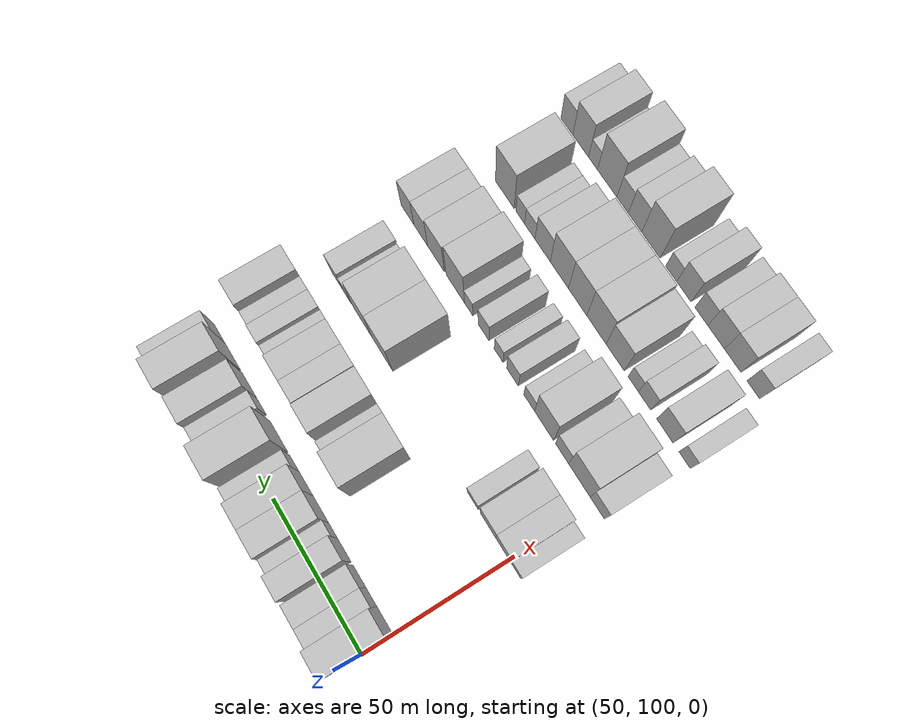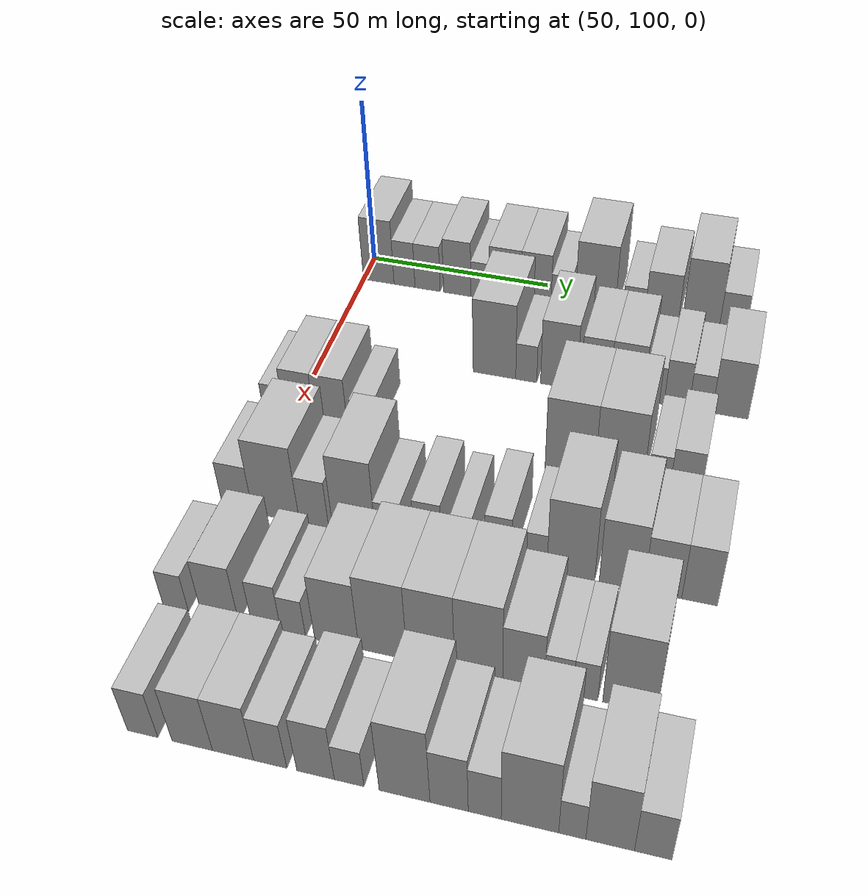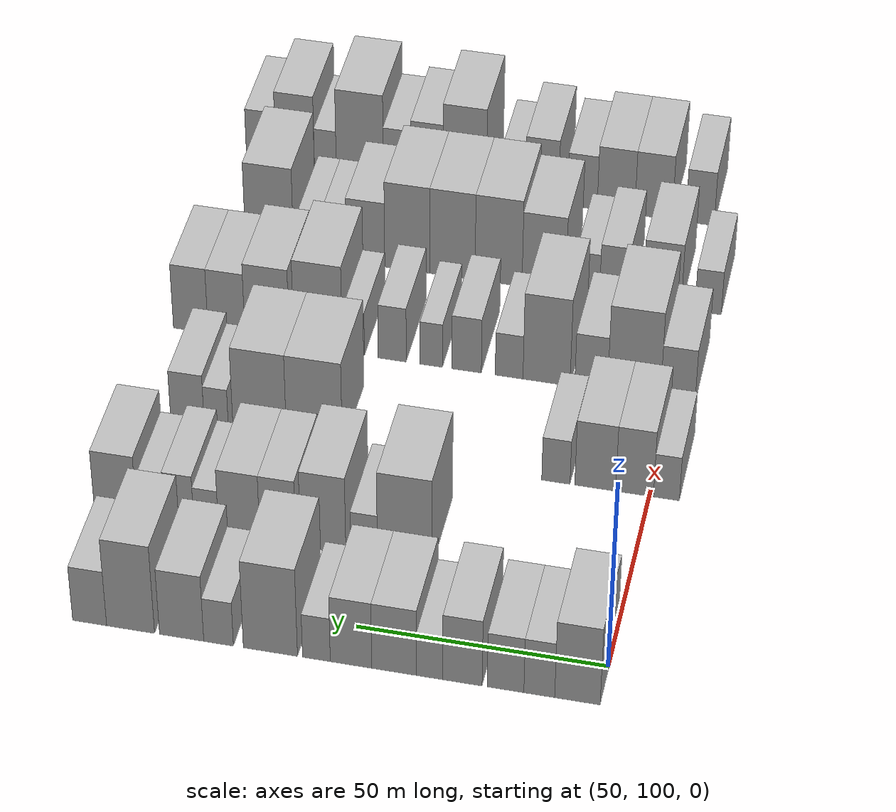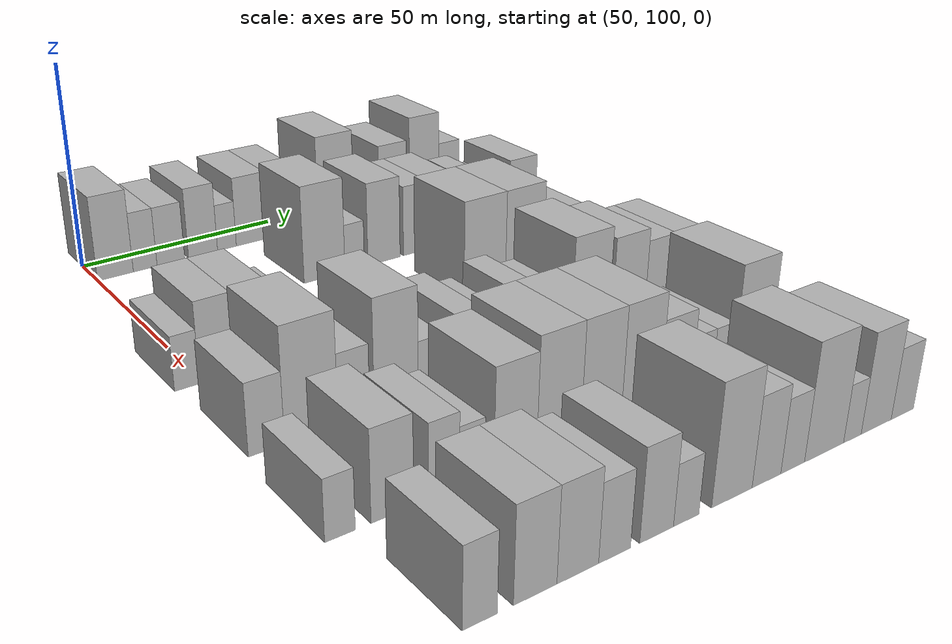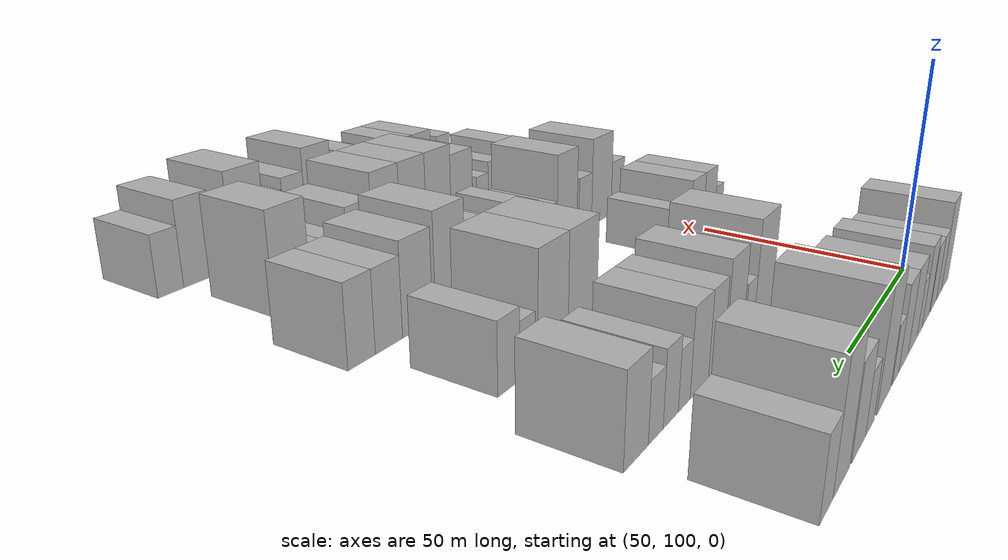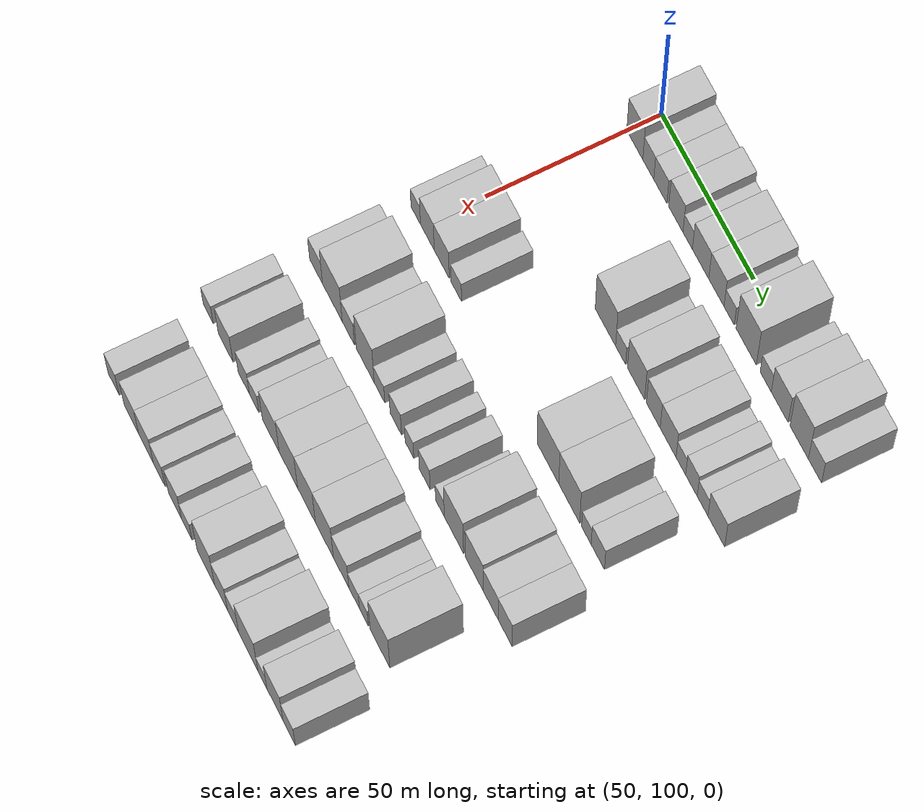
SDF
<sdf version="1.6">
 <world name="default">
  <model name="building_69">
   <static>1</static>
   <pose>50.0000 104.3510 0 0.000000 0.000000 0.000000</pose>
   <link name="link">
    <pose>0 0 10.50 0 0 0</pose>
    <collision name="collision"><geometry><box><size>20.0000 8.8529 21.0000</size></box></geometry></collision>
    <visual name="visual">
     <cast_shadows>0</cast_shadows>
     <geometry><box><size>20.0000 8.8529 21.0000</size></box></geometry>
     <material>
      <script>
       <uri>model://HANNAS_wall/materials/scripts</uri>
       <uri>model://HANNAS_wall/materials/textures</uri>
       <name>vrc/HANNAS_wall</name>
      </script>
     </material>
    </visual>
   </link>
  </model>
  <model name="building_70">
   <static>1</static>
   <pose>50.0000 111.7873 0 0.000000 0.000000 0.000000</pose>
   <link name="link">
    <pose>0 0 7.50 0 0 0</pose>
    <collision name="collision"><geometry><box><size>20.0000 6.0197 15.0000</size></box></geometry></collision>
    <visual name="visual">
     <cast_shadows>0</cast_shadows>
     <geometry><box><size>20.0000 6.0197 15.0000</size></box></geometry>
     <material>
      <script>
       <uri>model://HANNAS_wall/materials/scripts</uri>
       <uri>model://HANNAS_wall/materials/textures</uri>
       <name>vrc/HANNAS_wall</name>
      </script>
     </material>
    </visual>
   </link>
  </model>
  <model name="building_71">
   <static>1</static>
   <pose>50.0000 118.3914 0 0.000000 0.000000 0.000000</pose>
   <link name="link">
    <pose>0 0 7.50 0 0 0</pose>
    <collision name="collision"><geometry><box><size>20.0000 7.1885 15.0000</size></box></geometry></collision>
    <visual name="visual">
     <cast_shadows>0</cast_shadows>
     <geometry><box><size>20.0000 7.1885 15.0000</size></box></geometry>
     <material>
      <script>
       <uri>model://HANNAS_wall/materials/scripts</uri>
       <uri>model://HANNAS_wall/materials/textures</uri>
       <name>vrc/HANNAS_wall</name>
      </script>
     </material>
    </visual>
   </link>
  </model>
  <model name="building_72">
   <static>1</static>
   <pose>50.0000 126.8621 0 0.000000 0.000000 0.000000</pose>
   <link name="link">
    <pose>0 0 9.00 0 0 0</pose>
    <collision name="collision"><geometry><box><size>20.0000 7.7528 18.0000</size></box></geometry></collision>
    <visual name="visual">
     <cast_shadows>0</cast_shadows>
     <geometry><box><size>20.0000 7.7528 18.0000</size></box></geometry>
     <material>
      <script>
       <uri>model://HANNAS_wall/materials/scripts</uri>
       <uri>model://HANNAS_wall/materials/textures</uri>
       <name>vrc/HANNAS_wall</name>
      </script>
     </material>
    </visual>
   </link>
  </model>
  <model name="building_73">
   <static>1</static>
   <pose>50.0000 133.3177 0 0.000000 0.000000 0.000000</pose>
   <link name="link">
    <pose>0 0 6.00 0 0 0</pose>
    <collision name="collision"><geometry><box><size>20.0000 5.1585 12.0000</size></box></geometry></collision>
    <visual name="visual">
     <cast_shadows>0</cast_shadows>
     <geometry><box><size>20.0000 5.1585 12.0000</size></box></geometry>
     <material>
      <script>
       <uri>model://HANNAS_wall/materials/scripts</uri>
       <uri>model://HANNAS_wall/materials/textures</uri>
       <name>vrc/HANNAS_wall</name>
      </script>
     </material>
    </visual>
   </link>
  </model>
  <model name="building_74">
   <static>1</static>
   <pose>50.0000 140.3248 0 0.000000 0.000000 0.000000</pose>
   <link name="link">
    <pose>0 0 9.00 0 0 0</pose>
    <collision name="collision"><geometry><box><size>20.0000 8.8556 18.0000</size></box></geometry></collision>
    <visual name="visual">
     <cast_shadows>0</cast_shadows>
     <geometry><box><size>20.0000 8.8556 18.0000</size></box></geometry>
     <material>
      <script>
       <uri>model://HANNAS_wall/materials/scripts</uri>
       <uri>model://HANNAS_wall/materials/textures</uri>
       <name>vrc/HANNAS_wall</name>
      </script>
     </material>
    </visual>
   </link>
  </model>
  <model name="building_75">
   <static>1</static>
   <pose>50.0000 148.8690 0 0.000000 0.000000 0.000000</pose>
   <link name="link">
    <pose>0 0 9.00 0 0 0</pose>
    <collision name="collision"><geometry><box><size>20.0000 8.2329 18.0000</size></box></geometry></collision>
    <visual name="visual">
     <cast_shadows>0</cast_shadows>
     <geometry><box><size>20.0000 8.2329 18.0000</size></box></geometry>
     <material>
      <script>
       <uri>model://HANNAS_wall/materials/scripts</uri>
       <uri>model://HANNAS_wall/materials/textures</uri>
       <name>vrc/HANNAS_wall</name>
      </script>
     </material>
    </visual>
   </link>
  </model>
  <model name="building_76">
   <static>1</static>
   <pose>50.0000 155.7527 0 0.000000 0.000000 0.000000</pose>
   <link name="link">
    <pose>0 0 6.00 0 0 0</pose>
    <collision name="collision"><geometry><box><size>20.0000 5.5344 12.0000</size></box></geometry></collision>
    <visual name="visual">
     <cast_shadows>0</cast_shadows>
     <geometry><box><size>20.0000 5.5344 12.0000</size></box></geometry>
     <material>
      <script>
       <uri>model://HANNAS_wall/materials/scripts</uri>
       <uri>model://HANNAS_wall/materials/textures</uri>
       <name>vrc/HANNAS_wall</name>
      </script>
     </material>
    </visual>
   </link>
  </model>
  <model name="building_77">
   <static>1</static>
   <pose>50.0000 164.9364 0 0.000000 0.000000 0.000000</pose>
   <link name="link">
    <pose>0 0 12.00 0 0 0</pose>
    <collision name="collision"><geometry><box><size>20.0000 10.8329 24.0000</size></box></geometry></collision>
    <visual name="visual">
     <cast_shadows>0</cast_shadows>
     <geometry><box><size>20.0000 10.8329 24.0000</size></box></geometry>
     <material>
      <script>
       <uri>model://HANNAS_wall/materials/scripts</uri>
       <uri>model://HANNAS_wall/materials/textures</uri>
       <name>vrc/HANNAS_wall</name>
      </script>
     </material>
    </visual>
   </link>
  </model>
  <model name="building_78">
   <static>1</static>
   <pose>50.0000 175.3339 0 0.000000 0.000000 0.000000</pose>
   <link name="link">
    <pose>0 0 6.00 0 0 0</pose>
    <collision name="collision"><geometry><box><size>20.0000 5.9622 12.0000</size></box></geometry></collision>
    <visual name="visual">
     <cast_shadows>0</cast_shadows>
     <geometry><box><size>20.0000 5.9622 12.0000</size></box></geometry>
     <material>
      <script>
       <uri>model://HANNAS_wall/materials/scripts</uri>
       <uri>model://HANNAS_wall/materials/textures</uri>
       <name>vrc/HANNAS_wall</name>
      </script>
     </material>
    </visual>
   </link>
  </model>
  <model name="building_79">
   <static>1</static>
   <pose>50.0000 182.7786 0 0.000000 0.000000 0.000000</pose>
   <link name="link">
    <pose>0 0 9.00 0 0 0</pose>
    <collision name="collision"><geometry><box><size>20.0000 8.9271 18.0000</size></box></geometry></collision>
    <visual name="visual">
     <cast_shadows>0</cast_shadows>
     <geometry><box><size>20.0000 8.9271 18.0000</size></box></geometry>
     <material>
      <script>
       <uri>model://HANNAS_wall/materials/scripts</uri>
       <uri>model://HANNAS_wall/materials/textures</uri>
       <name>vrc/HANNAS_wall</name>
      </script>
     </material>
    </visual>
   </link>
  </model>
  <model name="building_80">
   <static>1</static>
   <pose>50.0000 193.1009 0 0.000000 0.000000 0.000000</pose>
   <link name="link">
    <pose>0 0 12.00 0 0 0</pose>
    <collision name="collision"><geometry><box><size>20.0000 9.7175 24.0000</size></box></geometry></collision>
    <visual name="visual">
     <cast_shadows>0</cast_shadows>
     <geometry><box><size>20.0000 9.7175 24.0000</size></box></geometry>
     <material>
      <script>
       <uri>model://HANNAS_wall/materials/scripts</uri>
       <uri>model://HANNAS_wall/materials/textures</uri>
       <name>vrc/HANNAS_wall</name>
      </script>
     </material>
    </visual>
   </link>
  </model>
  <model name="building_81">
   <static>1</static>
   <pose>50.0000 201.4125 0 0.000000 0.000000 0.000000</pose>
   <link name="link">
    <pose>0 0 7.50 0 0 0</pose>
    <collision name="collision"><geometry><box><size>20.0000 6.9056 15.0000</size></box></geometry></collision>
    <visual name="visual">
     <cast_shadows>0</cast_shadows>
     <geometry><box><size>20.0000 6.9056 15.0000</size></box></geometry>
     <material>
      <script>
       <uri>model://HANNAS_wall/materials/scripts</uri>
       <uri>model://HANNAS_wall/materials/textures</uri>
       <name>vrc/HANNAS_wall</name>
      </script>
     </material>
    </visual>
   </link>
  </model>
  <model name="building_185">
   <static>1</static>
   <pose>79.0000 144.6253 0 0.000000 0.000000 0.000000</pose>
   <link name="link">
    <pose>0 0 12.00 0 0 0</pose>
    <collision name="collision"><geometry><box><size>20.0000 11.1247 24.0000</size></box></geometry></collision>
    <visual name="visual">
     <cast_shadows>0</cast_shadows>
     <geometry><box><size>20.0000 11.1247 24.0000</size></box></geometry>
     <material>
      <script>
       <uri>model://HANNAS_wall/materials/scripts</uri>
       <uri>model://HANNAS_wall/materials/textures</uri>
       <name>vrc/HANNAS_wall</name>
      </script>
     </material>
    </visual>
   </link>
  </model>
  <model name="building_186">
   <static>1</static>
   <pose>79.0000 152.9149 0 0.000000 0.000000 0.000000</pose>
   <link name="link">
    <pose>0 0 6.00 0 0 0</pose>
    <collision name="collision"><geometry><box><size>20.0000 5.4545 12.0000</size></box></geometry></collision>
    <visual name="visual">
     <cast_shadows>0</cast_shadows>
     <geometry><box><size>20.0000 5.4545 12.0000</size></box></geometry>
     <material>
      <script>
       <uri>model://HANNAS_wall/materials/scripts</uri>
       <uri>model://HANNAS_wall/materials/textures</uri>
       <name>vrc/HANNAS_wall</name>
      </script>
     </material>
    </visual>
   </link>
  </model>
  <model name="building_187">
   <static>1</static>
   <pose>79.0000 161.2918 0 0.000000 0.000000 0.000000</pose>
   <link name="link">
    <pose>0 0 10.50 0 0 0</pose>
    <collision name="collision"><geometry><box><size>20.0000 9.2992 21.0000</size></box></geometry></collision>
    <visual name="visual">
     <cast_shadows>0</cast_shadows>
     <geometry><box><size>20.0000 9.2992 21.0000</size></box></geometry>
     <material>
      <script>
       <uri>model://HANNAS_wall/materials/scripts</uri>
       <uri>model://HANNAS_wall/materials/textures</uri>
       <name>vrc/HANNAS_wall</name>
      </script>
     </material>
    </visual>
   </link>
  </model>
  <model name="building_188">
   <static>1</static>
   <pose>79.0000 170.6440 0 0.000000 0.000000 0.000000</pose>
   <link name="link">
    <pose>0 0 9.00 0 0 0</pose>
    <collision name="collision"><geometry><box><size>20.0000 7.4051 18.0000</size></box></geometry></collision>
    <visual name="visual">
     <cast_shadows>0</cast_shadows>
     <geometry><box><size>20.0000 7.4051 18.0000</size></box></geometry>
     <material>
      <script>
       <uri>model://HANNAS_wall/materials/scripts</uri>
       <uri>model://HANNAS_wall/materials/textures</uri>
       <name>vrc/HANNAS_wall</name>
      </script>
     </material>
    </visual>
   </link>
  </model>
  <model name="building_189">
   <static>1</static>
   <pose>79.0000 178.6132 0 0.000000 0.000000 0.000000</pose>
   <link name="link">
    <pose>0 0 9.00 0 0 0</pose>
    <collision name="collision"><geometry><box><size>20.0000 8.5334 18.0000</size></box></geometry></collision>
    <visual name="visual">
     <cast_shadows>0</cast_shadows>
     <geometry><box><size>20.0000 8.5334 18.0000</size></box></geometry>
     <material>
      <script>
       <uri>model://HANNAS_wall/materials/scripts</uri>
       <uri>model://HANNAS_wall/materials/textures</uri>
       <name>vrc/HANNAS_wall</name>
      </script>
     </material>
    </visual>
   </link>
  </model>
  <model name="building_190">
   <static>1</static>
   <pose>79.0000 185.4321 0 0.000000 0.000000 0.000000</pose>
   <link name="link">
    <pose>0 0 6.00 0 0 0</pose>
    <collision name="collision"><geometry><box><size>20.0000 5.1045 12.0000</size></box></geometry></collision>
    <visual name="visual">
     <cast_shadows>0</cast_shadows>
     <geometry><box><size>20.0000 5.1045 12.0000</size></box></geometry>
     <material>
      <script>
       <uri>model://HANNAS_wall/materials/scripts</uri>
       <uri>model://HANNAS_wall/materials/textures</uri>
       <name>vrc/HANNAS_wall</name>
      </script>
     </material>
    </visual>
   </link>
  </model>
  <model name="building_191">
   <static>1</static>
   <pose>79.0000 191.0801 0 0.000000 0.000000 0.000000</pose>
   <link name="link">
    <pose>0 0 7.50 0 0 0</pose>
    <collision name="collision"><geometry><box><size>20.0000 6.1915 15.0000</size></box></geometry></collision>
    <visual name="visual">
     <cast_shadows>0</cast_shadows>
     <geometry><box><size>20.0000 6.1915 15.0000</size></box></geometry>
     <material>
      <script>
       <uri>model://HANNAS_wall/materials/scripts</uri>
       <uri>model://HANNAS_wall/materials/textures</uri>
       <name>vrc/HANNAS_wall</name>
      </script>
     </material>
    </visual>
   </link>
  </model>
  <model name="building_192">
   <static>1</static>
   <pose>79.0000 197.0369 0 0.000000 0.000000 0.000000</pose>
   <link name="link">
    <pose>0 0 6.00 0 0 0</pose>
    <collision name="collision"><geometry><box><size>20.0000 5.7221 12.0000</size></box></geometry></collision>
    <visual name="visual">
     <cast_shadows>0</cast_shadows>
     <geometry><box><size>20.0000 5.7221 12.0000</size></box></geometry>
     <material>
      <script>
       <uri>model://HANNAS_wall/materials/scripts</uri>
       <uri>model://HANNAS_wall/materials/textures</uri>
       <name>vrc/HANNAS_wall</name>
      </script>
     </material>
    </visual>
   </link>
  </model>
  <model name="building_193">
   <static>1</static>
   <pose>79.0000 204.3226 0 0.000000 0.000000 0.000000</pose>
   <link name="link">
    <pose>0 0 9.00 0 0 0</pose>
    <collision name="collision"><geometry><box><size>20.0000 8.8493 18.0000</size></box></geometry></collision>
    <visual name="visual">
     <cast_shadows>0</cast_shadows>
     <geometry><box><size>20.0000 8.8493 18.0000</size></box></geometry>
     <material>
      <script>
       <uri>model://HANNAS_wall/materials/scripts</uri>
       <uri>model://HANNAS_wall/materials/textures</uri>
       <name>vrc/HANNAS_wall</name>
      </script>
     </material>
    </visual>
   </link>
  </model>
  <model name="building_303">
   <static>1</static>
   <pose>108.0000 96.5431 0 0.000000 0.000000 0.000000</pose>
   <link name="link">
    <pose>0 0 6.00 0 0 0</pose>
    <collision name="collision"><geometry><box><size>20.0000 5.3476 12.0000</size></box></geometry></collision>
    <visual name="visual">
     <cast_shadows>0</cast_shadows>
     <geometry><box><size>20.0000 5.3476 12.0000</size></box></geometry>
     <material>
      <script>
       <uri>model://HANNAS_wall/materials/scripts</uri>
       <uri>model://HANNAS_wall/materials/textures</uri>
       <name>vrc/HANNAS_wall</name>
      </script>
     </material>
    </visual>
   </link>
  </model>
  <model name="building_304">
   <static>1</static>
   <pose>108.0000 103.1153 0 0.000000 0.000000 0.000000</pose>
   <link name="link">
    <pose>0 0 9.00 0 0 0</pose>
    <collision name="collision"><geometry><box><size>20.0000 7.7969 18.0000</size></box></geometry></collision>
    <visual name="visual">
     <cast_shadows>0</cast_shadows>
     <geometry><box><size>20.0000 7.7969 18.0000</size></box></geometry>
     <material>
      <script>
       <uri>model://HANNAS_wall/materials/scripts</uri>
       <uri>model://HANNAS_wall/materials/textures</uri>
       <name>vrc/HANNAS_wall</name>
      </script>
     </material>
    </visual>
   </link>
  </model>
  <model name="building_305">
   <static>1</static>
   <pose>108.0000 111.2338 0 0.000000 0.000000 0.000000</pose>
   <link name="link">
    <pose>0 0 9.00 0 0 0</pose>
    <collision name="collision"><geometry><box><size>20.0000 8.4402 18.0000</size></box></geometry></collision>
    <visual name="visual">
     <cast_shadows>0</cast_shadows>
     <geometry><box><size>20.0000 8.4402 18.0000</size></box></geometry>
     <material>
      <script>
       <uri>model://HANNAS_wall/materials/scripts</uri>
       <uri>model://HANNAS_wall/materials/textures</uri>
       <name>vrc/HANNAS_wall</name>
      </script>
     </material>
    </visual>
   </link>
  </model>
  <model name="building_306">
   <static>1</static>
   <pose>108.0000 119.3894 0 0.000000 0.000000 0.000000</pose>
   <link name="link">
    <pose>0 0 6.00 0 0 0</pose>
    <collision name="collision"><geometry><box><size>20.0000 5.8710 12.0000</size></box></geometry></collision>
    <visual name="visual">
     <cast_shadows>0</cast_shadows>
     <geometry><box><size>20.0000 5.8710 12.0000</size></box></geometry>
     <material>
      <script>
       <uri>model://HANNAS_wall/materials/scripts</uri>
       <uri>model://HANNAS_wall/materials/textures</uri>
       <name>vrc/HANNAS_wall</name>
      </script>
     </material>
    </visual>
   </link>
  </model>
  <model name="building_307">
   <static>1</static>
   <pose>108.0000 170.0744 0 0.000000 0.000000 0.000000</pose>
   <link name="link">
    <pose>0 0 12.00 0 0 0</pose>
    <collision name="collision"><geometry><box><size>20.0000 11.8330 24.0000</size></box></geometry></collision>
    <visual name="visual">
     <cast_shadows>0</cast_shadows>
     <geometry><box><size>20.0000 11.8330 24.0000</size></box></geometry>
     <material>
      <script>
       <uri>model://HANNAS_wall/materials/scripts</uri>
       <uri>model://HANNAS_wall/materials/textures</uri>
       <name>vrc/HANNAS_wall</name>
      </script>
     </material>
    </visual>
   </link>
  </model>
  <model name="building_308">
   <static>1</static>
   <pose>108.0000 181.6808 0 0.000000 0.000000 0.000000</pose>
   <link name="link">
    <pose>0 0 12.00 0 0 0</pose>
    <collision name="collision"><geometry><box><size>20.0000 11.3798 24.0000</size></box></geometry></collision>
    <visual name="visual">
     <cast_shadows>0</cast_shadows>
     <geometry><box><size>20.0000 11.3798 24.0000</size></box></geometry>
     <material>
      <script>
       <uri>model://HANNAS_wall/materials/scripts</uri>
       <uri>model://HANNAS_wall/materials/textures</uri>
       <name>vrc/HANNAS_wall</name>
      </script>
     </material>
    </visual>
   </link>
  </model>
  <model name="building_309">
   <static>1</static>
   <pose>108.0000 190.9514 0 0.000000 0.000000 0.000000</pose>
   <link name="link">
    <pose>0 0 6.00 0 0 0</pose>
    <collision name="collision"><geometry><box><size>20.0000 5.1615 12.0000</size></box></geometry></collision>
    <visual name="visual">
     <cast_shadows>0</cast_shadows>
     <geometry><box><size>20.0000 5.1615 12.0000</size></box></geometry>
     <material>
      <script>
       <uri>model://HANNAS_wall/materials/scripts</uri>
       <uri>model://HANNAS_wall/materials/textures</uri>
       <name>vrc/HANNAS_wall</name>
      </script>
     </material>
    </visual>
   </link>
  </model>
  <model name="building_310">
   <static>1</static>
   <pose>108.0000 197.1261 0 0.000000 0.000000 0.000000</pose>
   <link name="link">
    <pose>0 0 7.50 0 0 0</pose>
    <collision name="collision"><geometry><box><size>20.0000 7.1878 15.0000</size></box></geometry></collision>
    <visual name="visual">
     <cast_shadows>0</cast_shadows>
     <geometry><box><size>20.0000 7.1878 15.0000</size></box></geometry>
     <material>
      <script>
       <uri>model://HANNAS_wall/materials/scripts</uri>
       <uri>model://HANNAS_wall/materials/textures</uri>
       <name>vrc/HANNAS_wall</name>
      </script>
     </material>
    </visual>
   </link>
  </model>
  <model name="building_414">
   <static>1</static>
   <pose>137.0000 98.8829 0 0.000000 0.000000 0.000000</pose>
   <link name="link">
    <pose>0 0 7.50 0 0 0</pose>
    <collision name="collision"><geometry><box><size>20.0000 7.3211 15.0000</size></box></geometry></collision>
    <visual name="visual">
     <cast_shadows>0</cast_shadows>
     <geometry><box><size>20.0000 7.3211 15.0000</size></box></geometry>
     <material>
      <script>
       <uri>model://HANNAS_wall/materials/scripts</uri>
       <uri>model://HANNAS_wall/materials/textures</uri>
       <name>vrc/HANNAS_wall</name>
      </script>
     </material>
    </visual>
   </link>
  </model>
  <model name="building_415">
   <static>1</static>
   <pose>137.0000 108.1697 0 0.000000 0.000000 0.000000</pose>
   <link name="link">
    <pose>0 0 12.00 0 0 0</pose>
    <collision name="collision"><geometry><box><size>20.0000 11.2525 24.0000</size></box></geometry></collision>
    <visual name="visual">
     <cast_shadows>0</cast_shadows>
     <geometry><box><size>20.0000 11.2525 24.0000</size></box></geometry>
     <material>
      <script>
       <uri>model://HANNAS_wall/materials/scripts</uri>
       <uri>model://HANNAS_wall/materials/textures</uri>
       <name>vrc/HANNAS_wall</name>
      </script>
     </material>
    </visual>
   </link>
  </model>
  <model name="building_416">
   <static>1</static>
   <pose>137.0000 117.2885 0 0.000000 0.000000 0.000000</pose>
   <link name="link">
    <pose>0 0 7.50 0 0 0</pose>
    <collision name="collision"><geometry><box><size>20.0000 6.9851 15.0000</size></box></geometry></collision>
    <visual name="visual">
     <cast_shadows>0</cast_shadows>
     <geometry><box><size>20.0000 6.9851 15.0000</size></box></geometry>
     <material>
      <script>
       <uri>model://HANNAS_wall/materials/scripts</uri>
       <uri>model://HANNAS_wall/materials/textures</uri>
       <name>vrc/HANNAS_wall</name>
      </script>
     </material>
    </visual>
   </link>
  </model>
  <model name="building_417">
   <static>1</static>
   <pose>137.0000 126.8231 0 0.000000 0.000000 0.000000</pose>
   <link name="link">
    <pose>0 0 12.00 0 0 0</pose>
    <collision name="collision"><geometry><box><size>20.0000 10.0840 24.0000</size></box></geometry></collision>
    <visual name="visual">
     <cast_shadows>0</cast_shadows>
     <geometry><box><size>20.0000 10.0840 24.0000</size></box></geometry>
     <material>
      <script>
       <uri>model://HANNAS_wall/materials/scripts</uri>
       <uri>model://HANNAS_wall/materials/textures</uri>
       <name>vrc/HANNAS_wall</name>
      </script>
     </material>
    </visual>
   </link>
  </model>
  <model name="building_418">
   <static>1</static>
   <pose>137.0000 134.8421 0 0.000000 0.000000 0.000000</pose>
   <link name="link">
    <pose>0 0 6.00 0 0 0</pose>
    <collision name="collision"><geometry><box><size>20.0000 5.9541 12.0000</size></box></geometry></collision>
    <visual name="visual">
     <cast_shadows>0</cast_shadows>
     <geometry><box><size>20.0000 5.9541 12.0000</size></box></geometry>
     <material>
      <script>
       <uri>model://HANNAS_wall/materials/scripts</uri>
       <uri>model://HANNAS_wall/materials/textures</uri>
       <name>vrc/HANNAS_wall</name>
      </script>
     </material>
    </visual>
   </link>
  </model>
  <model name="building_419">
   <static>1</static>
   <pose>137.0000 144.0084 0 0.000000 0.000000 0.000000</pose>
   <link name="link">
    <pose>0 0 7.50 0 0 0</pose>
    <collision name="collision"><geometry><box><size>20.0000 6.3784 15.0000</size></box></geometry></collision>
    <visual name="visual">
     <cast_shadows>0</cast_shadows>
     <geometry><box><size>20.0000 6.3784 15.0000</size></box></geometry>
     <material>
      <script>
       <uri>model://HANNAS_wall/materials/scripts</uri>
       <uri>model://HANNAS_wall/materials/textures</uri>
       <name>vrc/HANNAS_wall</name>
      </script>
     </material>
    </visual>
   </link>
  </model>
  <model name="building_420">
   <static>1</static>
   <pose>137.0000 151.6259 0 0.000000 0.000000 0.000000</pose>
   <link name="link">
    <pose>0 0 6.00 0 0 0</pose>
    <collision name="collision"><geometry><box><size>20.0000 4.8565 12.0000</size></box></geometry></collision>
    <visual name="visual">
     <cast_shadows>0</cast_shadows>
     <geometry><box><size>20.0000 4.8565 12.0000</size></box></geometry>
     <material>
      <script>
       <uri>model://HANNAS_wall/materials/scripts</uri>
       <uri>model://HANNAS_wall/materials/textures</uri>
       <name>vrc/HANNAS_wall</name>
      </script>
     </material>
    </visual>
   </link>
  </model>
  <model name="building_421">
   <static>1</static>
   <pose>137.0000 160.0909 0 0.000000 0.000000 0.000000</pose>
   <link name="link">
    <pose>0 0 7.50 0 0 0</pose>
    <collision name="collision"><geometry><box><size>20.0000 6.0734 15.0000</size></box></geometry></collision>
    <visual name="visual">
     <cast_shadows>0</cast_shadows>
     <geometry><box><size>20.0000 6.0734 15.0000</size></box></geometry>
     <material>
      <script>
       <uri>model://HANNAS_wall/materials/scripts</uri>
       <uri>model://HANNAS_wall/materials/textures</uri>
       <name>vrc/HANNAS_wall</name>
      </script>
     </material>
    </visual>
   </link>
  </model>
  <model name="building_422">
   <static>1</static>
   <pose>137.0000 168.5416 0 0.000000 0.000000 0.000000</pose>
   <link name="link">
    <pose>0 0 6.00 0 0 0</pose>
    <collision name="collision"><geometry><box><size>20.0000 4.8282 12.0000</size></box></geometry></collision>
    <visual name="visual">
     <cast_shadows>0</cast_shadows>
     <geometry><box><size>20.0000 4.8282 12.0000</size></box></geometry>
     <material>
      <script>
       <uri>model://HANNAS_wall/materials/scripts</uri>
       <uri>model://HANNAS_wall/materials/textures</uri>
       <name>vrc/HANNAS_wall</name>
      </script>
     </material>
    </visual>
   </link>
  </model>
  <model name="building_423">
   <static>1</static>
   <pose>137.0000 176.2398 0 0.000000 0.000000 0.000000</pose>
   <link name="link">
    <pose>0 0 12.00 0 0 0</pose>
    <collision name="collision"><geometry><box><size>20.0000 10.5681 24.0000</size></box></geometry></collision>
    <visual name="visual">
     <cast_shadows>0</cast_shadows>
     <geometry><box><size>20.0000 10.5681 24.0000</size></box></geometry>
     <material>
      <script>
       <uri>model://HANNAS_wall/materials/scripts</uri>
       <uri>model://HANNAS_wall/materials/textures</uri>
       <name>vrc/HANNAS_wall</name>
      </script>
     </material>
    </visual>
   </link>
  </model>
  <model name="building_424">
   <static>1</static>
   <pose>137.0000 187.3960 0 0.000000 0.000000 0.000000</pose>
   <link name="link">
    <pose>0 0 10.50 0 0 0</pose>
    <collision name="collision"><geometry><box><size>20.0000 9.7442 21.0000</size></box></geometry></collision>
    <visual name="visual">
     <cast_shadows>0</cast_shadows>
     <geometry><box><size>20.0000 9.7442 21.0000</size></box></geometry>
     <material>
      <script>
       <uri>model://HANNAS_wall/materials/scripts</uri>
       <uri>model://HANNAS_wall/materials/textures</uri>
       <name>vrc/HANNAS_wall</name>
      </script>
     </material>
    </visual>
   </link>
  </model>
  <model name="building_425">
   <static>1</static>
   <pose>137.0000 196.3397 0 0.000000 0.000000 0.000000</pose>
   <link name="link">
    <pose>0 0 9.00 0 0 0</pose>
    <collision name="collision"><geometry><box><size>20.0000 8.1434 18.0000</size></box></geometry></collision>
    <visual name="visual">
     <cast_shadows>0</cast_shadows>
     <geometry><box><size>20.0000 8.1434 18.0000</size></box></geometry>
     <material>
      <script>
       <uri>model://HANNAS_wall/materials/scripts</uri>
       <uri>model://HANNAS_wall/materials/textures</uri>
       <name>vrc/HANNAS_wall</name>
      </script>
     </material>
    </visual>
   </link>
  </model>
  <model name="building_426">
   <static>1</static>
   <pose>137.0000 204.2379 0 0.000000 0.000000 0.000000</pose>
   <link name="link">
    <pose>0 0 9.00 0 0 0</pose>
    <collision name="collision"><geometry><box><size>20.0000 7.6530 18.0000</size></box></geometry></collision>
    <visual name="visual">
     <cast_shadows>0</cast_shadows>
     <geometry><box><size>20.0000 7.6530 18.0000</size></box></geometry>
     <material>
      <script>
       <uri>model://HANNAS_wall/materials/scripts</uri>
       <uri>model://HANNAS_wall/materials/textures</uri>
       <name>vrc/HANNAS_wall</name>
      </script>
     </material>
    </visual>
   </link>
  </model>
  <model name="building_526">
   <static>1</static>
   <pose>166.0000 96.9299 0 0.000000 0.000000 0.000000</pose>
   <link name="link">
    <pose>0 0 6.00 0 0 0</pose>
    <collision name="collision"><geometry><box><size>20.0000 5.7387 12.0000</size></box></geometry></collision>
    <visual name="visual">
     <cast_shadows>0</cast_shadows>
     <geometry><box><size>20.0000 5.7387 12.0000</size></box></geometry>
     <material>
      <script>
       <uri>model://HANNAS_wall/materials/scripts</uri>
       <uri>model://HANNAS_wall/materials/textures</uri>
       <name>vrc/HANNAS_wall</name>
      </script>
     </material>
    </visual>
   </link>
  </model>
  <model name="building_527">
   <static>1</static>
   <pose>166.0000 107.0013 0 0.000000 0.000000 0.000000</pose>
   <link name="link">
    <pose>0 0 9.00 0 0 0</pose>
    <collision name="collision"><geometry><box><size>20.0000 8.4040 18.0000</size></box></geometry></collision>
    <visual name="visual">
     <cast_shadows>0</cast_shadows>
     <geometry><box><size>20.0000 8.4040 18.0000</size></box></geometry>
     <material>
      <script>
       <uri>model://HANNAS_wall/materials/scripts</uri>
       <uri>model://HANNAS_wall/materials/textures</uri>
       <name>vrc/HANNAS_wall</name>
      </script>
     </material>
    </visual>
   </link>
  </model>
  <model name="building_528">
   <static>1</static>
   <pose>166.0000 117.4271 0 0.000000 0.000000 0.000000</pose>
   <link name="link">
    <pose>0 0 7.50 0 0 0</pose>
    <collision name="collision"><geometry><box><size>20.0000 6.4476 15.0000</size></box></geometry></collision>
    <visual name="visual">
     <cast_shadows>0</cast_shadows>
     <geometry><box><size>20.0000 6.4476 15.0000</size></box></geometry>
     <material>
      <script>
       <uri>model://HANNAS_wall/materials/scripts</uri>
       <uri>model://HANNAS_wall/materials/textures</uri>
       <name>vrc/HANNAS_wall</name>
      </script>
     </material>
    </visual>
   </link>
  </model>
  <model name="building_529">
   <static>1</static>
   <pose>166.0000 123.3645 0 0.000000 0.000000 0.000000</pose>
   <link name="link">
    <pose>0 0 6.00 0 0 0</pose>
    <collision name="collision"><geometry><box><size>20.0000 5.4272 12.0000</size></box></geometry></collision>
    <visual name="visual">
     <cast_shadows>0</cast_shadows>
     <geometry><box><size>20.0000 5.4272 12.0000</size></box></geometry>
     <material>
      <script>
       <uri>model://HANNAS_wall/materials/scripts</uri>
       <uri>model://HANNAS_wall/materials/textures</uri>
       <name>vrc/HANNAS_wall</name>
      </script>
     </material>
    </visual>
   </link>
  </model>
  <model name="building_530">
   <static>1</static>
   <pose>166.0000 132.8949 0 0.000000 0.000000 0.000000</pose>
   <link name="link">
    <pose>0 0 10.50 0 0 0</pose>
    <collision name="collision"><geometry><box><size>20.0000 9.6337 21.0000</size></box></geometry></collision>
    <visual name="visual">
     <cast_shadows>0</cast_shadows>
     <geometry><box><size>20.0000 9.6337 21.0000</size></box></geometry>
     <material>
      <script>
       <uri>model://HANNAS_wall/materials/scripts</uri>
       <uri>model://HANNAS_wall/materials/textures</uri>
       <name>vrc/HANNAS_wall</name>
      </script>
     </material>
    </visual>
   </link>
  </model>
  <model name="building_531">
   <static>1</static>
   <pose>166.0000 142.9145 0 0.000000 0.000000 0.000000</pose>
   <link name="link">
    <pose>0 0 12.00 0 0 0</pose>
    <collision name="collision"><geometry><box><size>20.0000 10.4056 24.0000</size></box></geometry></collision>
    <visual name="visual">
     <cast_shadows>0</cast_shadows>
     <geometry><box><size>20.0000 10.4056 24.0000</size></box></geometry>
     <material>
      <script>
       <uri>model://HANNAS_wall/materials/scripts</uri>
       <uri>model://HANNAS_wall/materials/textures</uri>
       <name>vrc/HANNAS_wall</name>
      </script>
     </material>
    </visual>
   </link>
  </model>
  <model name="building_532">
   <static>1</static>
   <pose>166.0000 153.1536 0 0.000000 0.000000 0.000000</pose>
   <link name="link">
    <pose>0 0 12.00 0 0 0</pose>
    <collision name="collision"><geometry><box><size>20.0000 10.0724 24.0000</size></box></geometry></collision>
    <visual name="visual">
     <cast_shadows>0</cast_shadows>
     <geometry><box><size>20.0000 10.0724 24.0000</size></box></geometry>
     <material>
      <script>
       <uri>model://HANNAS_wall/materials/scripts</uri>
       <uri>model://HANNAS_wall/materials/textures</uri>
       <name>vrc/HANNAS_wall</name>
      </script>
     </material>
    </visual>
   </link>
  </model>
  <model name="building_533">
   <static>1</static>
   <pose>166.0000 163.2120 0 0.000000 0.000000 0.000000</pose>
   <link name="link">
    <pose>0 0 12.00 0 0 0</pose>
    <collision name="collision"><geometry><box><size>20.0000 10.0445 24.0000</size></box></geometry></collision>
    <visual name="visual">
     <cast_shadows>0</cast_shadows>
     <geometry><box><size>20.0000 10.0445 24.0000</size></box></geometry>
     <material>
      <script>
       <uri>model://HANNAS_wall/materials/scripts</uri>
       <uri>model://HANNAS_wall/materials/textures</uri>
       <name>vrc/HANNAS_wall</name>
      </script>
     </material>
    </visual>
   </link>
  </model>
  <model name="building_534">
   <static>1</static>
   <pose>166.0000 172.5311 0 0.000000 0.000000 0.000000</pose>
   <link name="link">
    <pose>0 0 9.00 0 0 0</pose>
    <collision name="collision"><geometry><box><size>20.0000 8.5937 18.0000</size></box></geometry></collision>
    <visual name="visual">
     <cast_shadows>0</cast_shadows>
     <geometry><box><size>20.0000 8.5937 18.0000</size></box></geometry>
     <material>
      <script>
       <uri>model://HANNAS_wall/materials/scripts</uri>
       <uri>model://HANNAS_wall/materials/textures</uri>
       <name>vrc/HANNAS_wall</name>
      </script>
     </material>
    </visual>
   </link>
  </model>
  <model name="building_535">
   <static>1</static>
   <pose>166.0000 179.7668 0 0.000000 0.000000 0.000000</pose>
   <link name="link">
    <pose>0 0 6.00 0 0 0</pose>
    <collision name="collision"><geometry><box><size>20.0000 5.8778 12.0000</size></box></geometry></collision>
    <visual name="visual">
     <cast_shadows>0</cast_shadows>
     <geometry><box><size>20.0000 5.8778 12.0000</size></box></geometry>
     <material>
      <script>
       <uri>model://HANNAS_wall/materials/scripts</uri>
       <uri>model://HANNAS_wall/materials/textures</uri>
       <name>vrc/HANNAS_wall</name>
      </script>
     </material>
    </visual>
   </link>
  </model>
  <model name="building_536">
   <static>1</static>
   <pose>166.0000 185.1869 0 0.000000 0.000000 0.000000</pose>
   <link name="link">
    <pose>0 0 6.00 0 0 0</pose>
    <collision name="collision"><geometry><box><size>20.0000 4.9623 12.0000</size></box></geometry></collision>
    <visual name="visual">
     <cast_shadows>0</cast_shadows>
     <geometry><box><size>20.0000 4.9623 12.0000</size></box></geometry>
     <material>
      <script>
       <uri>model://HANNAS_wall/materials/scripts</uri>
       <uri>model://HANNAS_wall/materials/textures</uri>
       <name>vrc/HANNAS_wall</name>
      </script>
     </material>
    </visual>
   </link>
  </model>
  <model name="building_537">
   <static>1</static>
   <pose>166.0000 194.0906 0 0.000000 0.000000 0.000000</pose>
   <link name="link">
    <pose>0 0 12.00 0 0 0</pose>
    <collision name="collision"><geometry><box><size>20.0000 10.8453 24.0000</size></box></geometry></collision>
    <visual name="visual">
     <cast_shadows>0</cast_shadows>
     <geometry><box><size>20.0000 10.8453 24.0000</size></box></geometry>
     <material>
      <script>
       <uri>model://HANNAS_wall/materials/scripts</uri>
       <uri>model://HANNAS_wall/materials/textures</uri>
       <name>vrc/HANNAS_wall</name>
      </script>
     </material>
    </visual>
   </link>
  </model>
  <model name="building_641">
   <static>1</static>
   <pose>195.0000 103.2229 0 0.000000 0.000000 0.000000</pose>
   <link name="link">
    <pose>0 0 7.50 0 0 0</pose>
    <collision name="collision"><geometry><box><size>20.0000 6.3928 15.0000</size></box></geometry></collision>
    <visual name="visual">
     <cast_shadows>0</cast_shadows>
     <geometry><box><size>20.0000 6.3928 15.0000</size></box></geometry>
     <material>
      <script>
       <uri>model://HANNAS_wall/materials/scripts</uri>
       <uri>model://HANNAS_wall/materials/textures</uri>
       <name>vrc/HANNAS_wall</name>
      </script>
     </material>
    </visual>
   </link>
  </model>
  <model name="building_642">
   <static>1</static>
   <pose>195.0000 113.6365 0 0.000000 0.000000 0.000000</pose>
   <link name="link">
    <pose>0 0 9.00 0 0 0</pose>
    <collision name="collision"><geometry><box><size>20.0000 8.4342 18.0000</size></box></geometry></collision>
    <visual name="visual">
     <cast_shadows>0</cast_shadows>
     <geometry><box><size>20.0000 8.4342 18.0000</size></box></geometry>
     <material>
      <script>
       <uri>model://HANNAS_wall/materials/scripts</uri>
       <uri>model://HANNAS_wall/materials/textures</uri>
       <name>vrc/HANNAS_wall</name>
      </script>
     </material>
    </visual>
   </link>
  </model>
  <model name="building_643">
   <static>1</static>
   <pose>195.0000 122.0881 0 0.000000 0.000000 0.000000</pose>
   <link name="link">
    <pose>0 0 9.00 0 0 0</pose>
    <collision name="collision"><geometry><box><size>20.0000 8.4690 18.0000</size></box></geometry></collision>
    <visual name="visual">
     <cast_shadows>0</cast_shadows>
     <geometry><box><size>20.0000 8.4690 18.0000</size></box></geometry>
     <material>
      <script>
       <uri>model://HANNAS_wall/materials/scripts</uri>
       <uri>model://HANNAS_wall/materials/textures</uri>
       <name>vrc/HANNAS_wall</name>
      </script>
     </material>
    </visual>
   </link>
  </model>
  <model name="building_644">
   <static>1</static>
   <pose>195.0000 129.7007 0 0.000000 0.000000 0.000000</pose>
   <link name="link">
    <pose>0 0 7.50 0 0 0</pose>
    <collision name="collision"><geometry><box><size>20.0000 6.7561 15.0000</size></box></geometry></collision>
    <visual name="visual">
     <cast_shadows>0</cast_shadows>
     <geometry><box><size>20.0000 6.7561 15.0000</size></box></geometry>
     <material>
      <script>
       <uri>model://HANNAS_wall/materials/scripts</uri>
       <uri>model://HANNAS_wall/materials/textures</uri>
       <name>vrc/HANNAS_wall</name>
      </script>
     </material>
    </visual>
   </link>
  </model>
  <model name="building_645">
   <static>1</static>
   <pose>195.0000 138.8457 0 0.000000 0.000000 0.000000</pose>
   <link name="link">
    <pose>0 0 9.00 0 0 0</pose>
    <collision name="collision"><geometry><box><size>20.0000 7.5340 18.0000</size></box></geometry></collision>
    <visual name="visual">
     <cast_shadows>0</cast_shadows>
     <geometry><box><size>20.0000 7.5340 18.0000</size></box></geometry>
     <material>
      <script>
       <uri>model://HANNAS_wall/materials/scripts</uri>
       <uri>model://HANNAS_wall/materials/textures</uri>
       <name>vrc/HANNAS_wall</name>
      </script>
     </material>
    </visual>
   </link>
  </model>
  <model name="building_646">
   <static>1</static>
   <pose>195.0000 145.5556 0 0.000000 0.000000 0.000000</pose>
   <link name="link">
    <pose>0 0 6.00 0 0 0</pose>
    <collision name="collision"><geometry><box><size>20.0000 5.8857 12.0000</size></box></geometry></collision>
    <visual name="visual">
     <cast_shadows>0</cast_shadows>
     <geometry><box><size>20.0000 5.8857 12.0000</size></box></geometry>
     <material>
      <script>
       <uri>model://HANNAS_wall/materials/scripts</uri>
       <uri>model://HANNAS_wall/materials/textures</uri>
       <name>vrc/HANNAS_wall</name>
      </script>
     </material>
    </visual>
   </link>
  </model>
  <model name="building_647">
   <static>1</static>
   <pose>195.0000 156.4642 0 0.000000 0.000000 0.000000</pose>
   <link name="link">
    <pose>0 0 12.00 0 0 0</pose>
    <collision name="collision"><geometry><box><size>20.0000 9.9316 24.0000</size></box></geometry></collision>
    <visual name="visual">
     <cast_shadows>0</cast_shadows>
     <geometry><box><size>20.0000 9.9316 24.0000</size></box></geometry>
     <material>
      <script>
       <uri>model://HANNAS_wall/materials/scripts</uri>
       <uri>model://HANNAS_wall/materials/textures</uri>
       <name>vrc/HANNAS_wall</name>
      </script>
     </material>
    </visual>
   </link>
  </model>
  <model name="building_648">
   <static>1</static>
   <pose>195.0000 165.1121 0 0.000000 0.000000 0.000000</pose>
   <link name="link">
    <pose>0 0 9.00 0 0 0</pose>
    <collision name="collision"><geometry><box><size>20.0000 7.3641 18.0000</size></box></geometry></collision>
    <visual name="visual">
     <cast_shadows>0</cast_shadows>
     <geometry><box><size>20.0000 7.3641 18.0000</size></box></geometry>
     <material>
      <script>
       <uri>model://HANNAS_wall/materials/scripts</uri>
       <uri>model://HANNAS_wall/materials/textures</uri>
       <name>vrc/HANNAS_wall</name>
      </script>
     </material>
    </visual>
   </link>
  </model>
  <model name="building_649">
   <static>1</static>
   <pose>195.0000 171.9331 0 0.000000 0.000000 0.000000</pose>
   <link name="link">
    <pose>0 0 7.50 0 0 0</pose>
    <collision name="collision"><geometry><box><size>20.0000 6.2780 15.0000</size></box></geometry></collision>
    <visual name="visual">
     <cast_shadows>0</cast_shadows>
     <geometry><box><size>20.0000 6.2780 15.0000</size></box></geometry>
     <material>
      <script>
       <uri>model://HANNAS_wall/materials/scripts</uri>
       <uri>model://HANNAS_wall/materials/textures</uri>
       <name>vrc/HANNAS_wall</name>
      </script>
     </material>
    </visual>
   </link>
  </model>
  <model name="building_650">
   <static>1</static>
   <pose>195.0000 180.4843 0 0.000000 0.000000 0.000000</pose>
   <link name="link">
    <pose>0 0 12.00 0 0 0</pose>
    <collision name="collision"><geometry><box><size>20.0000 10.8244 24.0000</size></box></geometry></collision>
    <visual name="visual">
     <cast_shadows>0</cast_shadows>
     <geometry><box><size>20.0000 10.8244 24.0000</size></box></geometry>
     <material>
      <script>
       <uri>model://HANNAS_wall/materials/scripts</uri>
       <uri>model://HANNAS_wall/materials/textures</uri>
       <name>vrc/HANNAS_wall</name>
      </script>
     </material>
    </visual>
   </link>
  </model>
  <model name="building_651">
   <static>1</static>
   <pose>195.0000 188.4207 0 0.000000 0.000000 0.000000</pose>
   <link name="link">
    <pose>0 0 6.00 0 0 0</pose>
    <collision name="collision"><geometry><box><size>20.0000 5.0484 12.0000</size></box></geometry></collision>
    <visual name="visual">
     <cast_shadows>0</cast_shadows>
     <geometry><box><size>20.0000 5.0484 12.0000</size></box></geometry>
     <material>
      <script>
       <uri>model://HANNAS_wall/materials/scripts</uri>
       <uri>model://HANNAS_wall/materials/textures</uri>
       <name>vrc/HANNAS_wall</name>
      </script>
     </material>
    </visual>
   </link>
  </model>
  <model name="building_652">
   <static>1</static>
   <pose>195.0000 195.4126 0 0.000000 0.000000 0.000000</pose>
   <link name="link">
    <pose>0 0 10.50 0 0 0</pose>
    <collision name="collision"><geometry><box><size>20.0000 8.9354 21.0000</size></box></geometry></collision>
    <visual name="visual">
     <cast_shadows>0</cast_shadows>
     <geometry><box><size>20.0000 8.9354 21.0000</size></box></geometry>
     <material>
      <script>
       <uri>model://HANNAS_wall/materials/scripts</uri>
       <uri>model://HANNAS_wall/materials/textures</uri>
       <name>vrc/HANNAS_wall</name>
      </script>
     </material>
    </visual>
   </link>
  </model>
  <model name="building_653">
   <static>1</static>
   <pose>195.0000 203.2992 0 0.000000 0.000000 0.000000</pose>
   <link name="link">
    <pose>0 0 7.50 0 0 0</pose>
    <collision name="collision"><geometry><box><size>20.0000 6.8377 15.0000</size></box></geometry></collision>
    <visual name="visual">
     <cast_shadows>0</cast_shadows>
     <geometry><box><size>20.0000 6.8377 15.0000</size></box></geometry>
     <material>
      <script>
       <uri>model://HANNAS_wall/materials/scripts</uri>
       <uri>model://HANNAS_wall/materials/textures</uri>
       <name>vrc/HANNAS_wall</name>
      </script>
     </material>
    </visual>
   </link>
  </model>
 </world>
</sdf>
